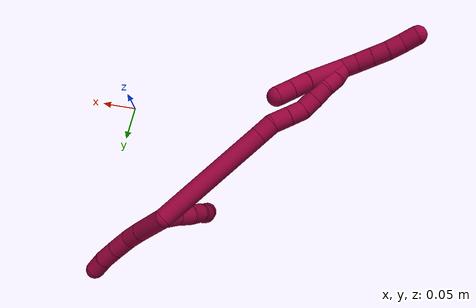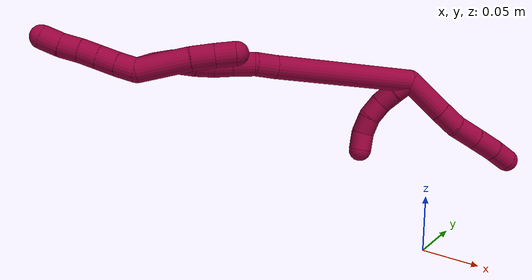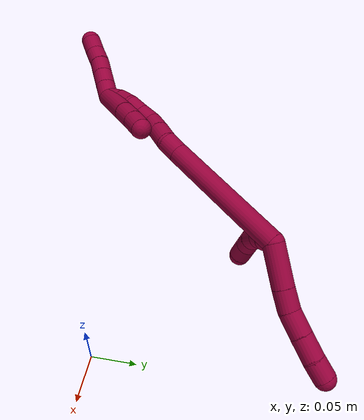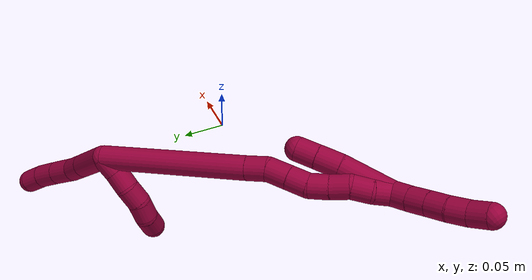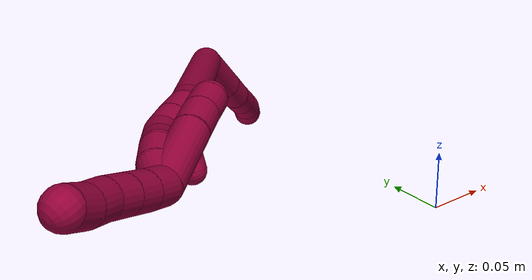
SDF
<sdf version="1.7">
 <world name="default">
  <model name="8">
   <static>0</static>
   <link name="8">
    <collision name="collision-cylinder-e_1_2_8">
     <pose>0.010073 0.01932 -0.010732 -2.07784 0.427662 -0.707049</pose>
     <geometry><cylinder><radius>0.0125</radius><length>0.048576</length></cylinder></geometry>
     <surface>
      <friction><ode><mu>1.16</mu><mu2>1.16</mu2><slip1>0</slip1><slip2>0</slip2></ode></friction>
      <contact><ode><kp>1e+06</kp><kd>1</kd><max_vel>0</max_vel><min_depth>0.001</min_depth></ode></contact>
     </surface>
    </collision>
    <visual name="visual-cylinder-e_1_2_8">
     <pose>0.010073 0.01932 -0.010732 -2.07784 0.427662 -0.707049</pose>
     <geometry><cylinder><radius>0.0125</radius><length>0.048576</length></cylinder></geometry>
     <material><ambient>0.584314 0 0.227451 1</ambient></material>
    </visual>
    <collision name="collision-cylinder-e_2_8_9">
     <pose>0.02571 0.048222 -0.026941 -2.09003 0.466881 -0.777802</pose>
     <geometry><cylinder><radius>0.0125</radius><length>0.024721</length></cylinder></geometry>
     <surface>
      <friction><ode><mu>1.16</mu><mu2>1.16</mu2><slip1>0</slip1><slip2>0</slip2></ode></friction>
      <contact><ode><kp>1e+06</kp><kd>1</kd><max_vel>0</max_vel><min_depth>0.001</min_depth></ode></contact>
     </surface>
    </collision>
    <visual name="visual-cylinder-e_2_8_9">
     <pose>0.02571 0.048222 -0.026941 -2.09003 0.466881 -0.777802</pose>
     <geometry><cylinder><radius>0.0125</radius><length>0.024721</length></cylinder></geometry>
     <material><ambient>0.584314 0 0.227451 1</ambient></material>
    </visual>
    <collision name="collision-cylinder-e_3_9_10">
     <pose>0.039364 0.066216 -0.039478 -2.26916 0.634992 -1.22805</pose>
     <geometry><cylinder><radius>0.0125</radius><length>0.027281</length></cylinder></geometry>
     <surface>
      <friction><ode><mu>1.16</mu><mu2>1.16</mu2><slip1>0</slip1><slip2>0</slip2></ode></friction>
      <contact><ode><kp>1e+06</kp><kd>1</kd><max_vel>0</max_vel><min_depth>0.001</min_depth></ode></contact>
     </surface>
    </collision>
    <visual name="visual-cylinder-e_3_9_10">
     <pose>0.039364 0.066216 -0.039478 -2.26916 0.634992 -1.22805</pose>
     <geometry><cylinder><radius>0.0125</radius><length>0.027281</length></cylinder></geometry>
     <material><ambient>0.584314 0 0.227451 1</ambient></material>
    </visual>
    <collision name="collision-cylinder-e_4_10_11">
     <pose>0.055602 0.082911 -0.053252 -2.25181 0.652395 -1.23419</pose>
     <geometry><cylinder><radius>0.0125</radius><length>0.026836</length></cylinder></geometry>
     <surface>
      <friction><ode><mu>1.16</mu><mu2>1.16</mu2><slip1>0</slip1><slip2>0</slip2></ode></friction>
      <contact><ode><kp>1e+06</kp><kd>1</kd><max_vel>0</max_vel><min_depth>0.001</min_depth></ode></contact>
     </surface>
    </collision>
    <visual name="visual-cylinder-e_4_10_11">
     <pose>0.055602 0.082911 -0.053252 -2.25181 0.652395 -1.23419</pose>
     <geometry><cylinder><radius>0.0125</radius><length>0.026836</length></cylinder></geometry>
     <material><ambient>0.584314 0 0.227451 1</ambient></material>
    </visual>
    <collision name="collision-cylinder-e_5_11_6">
     <pose>0.071348 0.098245 -0.064444 -2.13672 0.738305 -1.22696</pose>
     <geometry><cylinder><radius>0.0125</radius><length>0.022587</length></cylinder></geometry>
     <surface>
      <friction><ode><mu>1.16</mu><mu2>1.16</mu2><slip1>0</slip1><slip2>0</slip2></ode></friction>
      <contact><ode><kp>1e+06</kp><kd>1</kd><max_vel>0</max_vel><min_depth>0.001</min_depth></ode></contact>
     </surface>
    </collision>
    <visual name="visual-cylinder-e_5_11_6">
     <pose>0.071348 0.098245 -0.064444 -2.13672 0.738305 -1.22696</pose>
     <geometry><cylinder><radius>0.0125</radius><length>0.022587</length></cylinder></geometry>
     <material><ambient>0.584314 0 0.227451 1</ambient></material>
    </visual>
    <collision name="collision-cylinder-e_1_2_12">
     <pose>-0.001945 0.004157 0.008885 -0.43763 -0.195785 0.043671</pose>
     <geometry><cylinder><radius>0.0125</radius><length>0.02</length></cylinder></geometry>
     <surface>
      <friction><ode><mu>1.16</mu><mu2>1.16</mu2><slip1>0</slip1><slip2>0</slip2></ode></friction>
      <contact><ode><kp>1e+06</kp><kd>1</kd><max_vel>0</max_vel><min_depth>0.001</min_depth></ode></contact>
     </surface>
    </collision>
    <visual name="visual-cylinder-e_1_2_12">
     <pose>-0.001945 0.004157 0.008885 -0.43763 -0.195785 0.043671</pose>
     <geometry><cylinder><radius>0.0125</radius><length>0.02</length></cylinder></geometry>
     <material><ambient>0.584314 0 0.227451 1</ambient></material>
    </visual>
    <collision name="collision-cylinder-e_2_12_13">
     <pose>-0.004835 0.012675 0.026718 -0.453445 -0.094522 0.021821</pose>
     <geometry><cylinder><radius>0.0125</radius><length>0.02</length></cylinder></geometry>
     <surface>
      <friction><ode><mu>1.16</mu><mu2>1.16</mu2><slip1>0</slip1><slip2>0</slip2></ode></friction>
      <contact><ode><kp>1e+06</kp><kd>1</kd><max_vel>0</max_vel><min_depth>0.001</min_depth></ode></contact>
     </surface>
    </collision>
    <visual name="visual-cylinder-e_2_12_13">
     <pose>-0.004835 0.012675 0.026718 -0.453445 -0.094522 0.021821</pose>
     <geometry><cylinder><radius>0.0125</radius><length>0.02</length></cylinder></geometry>
     <material><ambient>0.584314 0 0.227451 1</ambient></material>
    </visual>
    <collision name="collision-cylinder-e_3_13_14">
     <pose>-0.007524 0.023388 0.043192 -0.701128 -0.175468 0.064306</pose>
     <geometry><cylinder><radius>0.0125</radius><length>0.02</length></cylinder></geometry>
     <surface>
      <friction><ode><mu>1.16</mu><mu2>1.16</mu2><slip1>0</slip1><slip2>0</slip2></ode></friction>
      <contact><ode><kp>1e+06</kp><kd>1</kd><max_vel>0</max_vel><min_depth>0.001</min_depth></ode></contact>
     </surface>
    </collision>
    <visual name="visual-cylinder-e_3_13_14">
     <pose>-0.007524 0.023388 0.043192 -0.701128 -0.175468 0.064306</pose>
     <geometry><cylinder><radius>0.0125</radius><length>0.02</length></cylinder></geometry>
     <material><ambient>0.584314 0 0.227451 1</ambient></material>
    </visual>
    <collision name="collision-cylinder-e_4_14_15">
     <pose>-0.009105 0.037773 0.056668 -0.933069 0.016516 -0.008318</pose>
     <geometry><cylinder><radius>0.0125</radius><length>0.02</length></cylinder></geometry>
     <surface>
      <friction><ode><mu>1.16</mu><mu2>1.16</mu2><slip1>0</slip1><slip2>0</slip2></ode></friction>
      <contact><ode><kp>1e+06</kp><kd>1</kd><max_vel>0</max_vel><min_depth>0.001</min_depth></ode></contact>
     </surface>
    </collision>
    <visual name="visual-cylinder-e_4_14_15">
     <pose>-0.009105 0.037773 0.056668 -0.933069 0.016516 -0.008318</pose>
     <geometry><cylinder><radius>0.0125</radius><length>0.02</length></cylinder></geometry>
     <material><ambient>0.584314 0 0.227451 1</ambient></material>
    </visual>
    <collision name="collision-cylinder-e_5_15_5">
     <pose>-0.010211 0.055216 0.065757 -1.24909 -0.127538 0.091988</pose>
     <geometry><cylinder><radius>0.0125</radius><length>0.02</length></cylinder></geometry>
     <surface>
      <friction><ode><mu>1.16</mu><mu2>1.16</mu2><slip1>0</slip1><slip2>0</slip2></ode></friction>
      <contact><ode><kp>1e+06</kp><kd>1</kd><max_vel>0</max_vel><min_depth>0.001</min_depth></ode></contact>
     </surface>
    </collision>
    <visual name="visual-cylinder-e_5_15_5">
     <pose>-0.010211 0.055216 0.065757 -1.24909 -0.127538 0.091988</pose>
     <geometry><cylinder><radius>0.0125</radius><length>0.02</length></cylinder></geometry>
     <material><ambient>0.584314 0 0.227451 1</ambient></material>
    </visual>
    <collision name="collision-cylinder-e_1_2_16">
     <pose>-0.055691 -0.01669 0.050802 0.317421 -0.805712 -0.13621</pose>
     <geometry><cylinder><radius>0.0125</radius><length>0.154413</length></cylinder></geometry>
     <surface>
      <friction><ode><mu>1.16</mu><mu2>1.16</mu2><slip1>0</slip1><slip2>0</slip2></ode></friction>
      <contact><ode><kp>1e+06</kp><kd>1</kd><max_vel>0</max_vel><min_depth>0.001</min_depth></ode></contact>
     </surface>
    </collision>
    <visual name="visual-cylinder-e_1_2_16">
     <pose>-0.055691 -0.01669 0.050802 0.317421 -0.805712 -0.13621</pose>
     <geometry><cylinder><radius>0.0125</radius><length>0.154413</length></cylinder></geometry>
     <material><ambient>0.584314 0 0.227451 1</ambient></material>
    </visual>
    <collision name="collision-cylinder-e_2_16_17">
     <pose>-0.119282 -0.036115 0.108644 0.370509 -0.807869 -0.159865</pose>
     <geometry><cylinder><radius>0.0125</radius><length>0.021861</length></cylinder></geometry>
     <surface>
      <friction><ode><mu>1.16</mu><mu2>1.16</mu2><slip1>0</slip1><slip2>0</slip2></ode></friction>
      <contact><ode><kp>1e+06</kp><kd>1</kd><max_vel>0</max_vel><min_depth>0.001</min_depth></ode></contact>
     </surface>
    </collision>
    <visual name="visual-cylinder-e_2_16_17">
     <pose>-0.119282 -0.036115 0.108644 0.370509 -0.807869 -0.159865</pose>
     <geometry><cylinder><radius>0.0125</radius><length>0.021861</length></cylinder></geometry>
     <material><ambient>0.584314 0 0.227451 1</ambient></material>
    </visual>
    <collision name="collision-cylinder-e_3_17_18">
     <pose>-0.132855 -0.04067 0.125542 0.182633 -0.514914 -0.048212</pose>
     <geometry><cylinder><radius>0.0125</radius><length>0.023034</length></cylinder></geometry>
     <surface>
      <friction><ode><mu>1.16</mu><mu2>1.16</mu2><slip1>0</slip1><slip2>0</slip2></ode></friction>
      <contact><ode><kp>1e+06</kp><kd>1</kd><max_vel>0</max_vel><min_depth>0.001</min_depth></ode></contact>
     </surface>
    </collision>
    <visual name="visual-cylinder-e_3_17_18">
     <pose>-0.132855 -0.04067 0.125542 0.182633 -0.514914 -0.048212</pose>
     <geometry><cylinder><radius>0.0125</radius><length>0.023034</length></cylinder></geometry>
     <material><ambient>0.584314 0 0.227451 1</ambient></material>
    </visual>
    <collision name="collision-cylinder-e_4_18_19">
     <pose>-0.143696 -0.043711 0.14413 0.138871 -0.530323 -0.037767</pose>
     <geometry><cylinder><radius>0.0125</radius><length>0.02044</length></cylinder></geometry>
     <surface>
      <friction><ode><mu>1.16</mu><mu2>1.16</mu2><slip1>0</slip1><slip2>0</slip2></ode></friction>
      <contact><ode><kp>1e+06</kp><kd>1</kd><max_vel>0</max_vel><min_depth>0.001</min_depth></ode></contact>
     </surface>
    </collision>
    <visual name="visual-cylinder-e_4_18_19">
     <pose>-0.143696 -0.043711 0.14413 0.138871 -0.530323 -0.037767</pose>
     <geometry><cylinder><radius>0.0125</radius><length>0.02044</length></cylinder></geometry>
     <material><ambient>0.584314 0 0.227451 1</ambient></material>
    </visual>
    <collision name="collision-cylinder-e_5_19_20">
     <pose>-0.156535 -0.046569 0.159259 0.250631 -0.859938 -0.115412</pose>
     <geometry><cylinder><radius>0.0125</radius><length>0.020243</length></cylinder></geometry>
     <surface>
      <friction><ode><mu>1.16</mu><mu2>1.16</mu2><slip1>0</slip1><slip2>0</slip2></ode></friction>
      <contact><ode><kp>1e+06</kp><kd>1</kd><max_vel>0</max_vel><min_depth>0.001</min_depth></ode></contact>
     </surface>
    </collision>
    <visual name="visual-cylinder-e_5_19_20">
     <pose>-0.156535 -0.046569 0.159259 0.250631 -0.859938 -0.115412</pose>
     <geometry><cylinder><radius>0.0125</radius><length>0.020243</length></cylinder></geometry>
     <material><ambient>0.584314 0 0.227451 1</ambient></material>
    </visual>
    <collision name="collision-cylinder-e_6_20_21">
     <pose>-0.172112 -0.050512 0.171337 0.385501 -0.911321 -0.190711</pose>
     <geometry><cylinder><radius>0.0125</radius><length>0.020009</length></cylinder></geometry>
     <surface>
      <friction><ode><mu>1.16</mu><mu2>1.16</mu2><slip1>0</slip1><slip2>0</slip2></ode></friction>
      <contact><ode><kp>1e+06</kp><kd>1</kd><max_vel>0</max_vel><min_depth>0.001</min_depth></ode></contact>
     </surface>
    </collision>
    <visual name="visual-cylinder-e_6_20_21">
     <pose>-0.172112 -0.050512 0.171337 0.385501 -0.911321 -0.190711</pose>
     <geometry><cylinder><radius>0.0125</radius><length>0.020009</length></cylinder></geometry>
     <material><ambient>0.584314 0 0.227451 1</ambient></material>
    </visual>
    <collision name="collision-cylinder-e_7_21_22">
     <pose>-0.186999 -0.052448 0.184168 -0.051627 -0.772643 0.021004</pose>
     <geometry><cylinder><radius>0.0125</radius><length>0.02</length></cylinder></geometry>
     <surface>
      <friction><ode><mu>1.16</mu><mu2>1.16</mu2><slip1>0</slip1><slip2>0</slip2></ode></friction>
      <contact><ode><kp>1e+06</kp><kd>1</kd><max_vel>0</max_vel><min_depth>0.001</min_depth></ode></contact>
     </surface>
    </collision>
    <visual name="visual-cylinder-e_7_21_22">
     <pose>-0.186999 -0.052448 0.184168 -0.051627 -0.772643 0.021004</pose>
     <geometry><cylinder><radius>0.0125</radius><length>0.02</length></cylinder></geometry>
     <material><ambient>0.584314 0 0.227451 1</ambient></material>
    </visual>
    <collision name="collision-cylinder-e_8_22_1">
     <pose>-0.202103 -0.049995 0.196766 -0.365265 -0.948183 0.188974</pose>
     <geometry><cylinder><radius>0.0125</radius><length>0.020001</length></cylinder></geometry>
     <surface>
      <friction><ode><mu>1.16</mu><mu2>1.16</mu2><slip1>0</slip1><slip2>0</slip2></ode></friction>
      <contact><ode><kp>1e+06</kp><kd>1</kd><max_vel>0</max_vel><min_depth>0.001</min_depth></ode></contact>
     </surface>
    </collision>
    <visual name="visual-cylinder-e_8_22_1">
     <pose>-0.202103 -0.049995 0.196766 -0.365265 -0.948183 0.188974</pose>
     <geometry><cylinder><radius>0.0125</radius><length>0.020001</length></cylinder></geometry>
     <material><ambient>0.584314 0 0.227451 1</ambient></material>
    </visual>
    <collision name="collision-cylinder-e_1_1_23">
     <pose>-0.214151 -0.052578 0.210139 0.53208 -0.403306 -0.1113</pose>
     <geometry><cylinder><radius>0.0125</radius><length>0.02</length></cylinder></geometry>
     <surface>
      <friction><ode><mu>1.16</mu><mu2>1.16</mu2><slip1>0</slip1><slip2>0</slip2></ode></friction>
      <contact><ode><kp>1e+06</kp><kd>1</kd><max_vel>0</max_vel><min_depth>0.001</min_depth></ode></contact>
     </surface>
    </collision>
    <visual name="visual-cylinder-e_1_1_23">
     <pose>-0.214151 -0.052578 0.210139 0.53208 -0.403306 -0.1113</pose>
     <geometry><cylinder><radius>0.0125</radius><length>0.02</length></cylinder></geometry>
     <material><ambient>0.584314 0 0.227451 1</ambient></material>
    </visual>
    <collision name="collision-cylinder-e_2_23_24">
     <pose>-0.222069 -0.062341 0.225686 0.589466 -0.410793 -0.126322</pose>
     <geometry><cylinder><radius>0.0125</radius><length>0.02</length></cylinder></geometry>
     <surface>
      <friction><ode><mu>1.16</mu><mu2>1.16</mu2><slip1>0</slip1><slip2>0</slip2></ode></friction>
      <contact><ode><kp>1e+06</kp><kd>1</kd><max_vel>0</max_vel><min_depth>0.001</min_depth></ode></contact>
     </surface>
    </collision>
    <visual name="visual-cylinder-e_2_23_24">
     <pose>-0.222069 -0.062341 0.225686 0.589466 -0.410793 -0.126322</pose>
     <geometry><cylinder><radius>0.0125</radius><length>0.02</length></cylinder></geometry>
     <material><ambient>0.584314 0 0.227451 1</ambient></material>
    </visual>
    <collision name="collision-cylinder-e_3_24_25">
     <pose>-0.229988 -0.072505 0.240983 0.583486 -0.403425 -0.122669</pose>
     <geometry><cylinder><radius>0.0125</radius><length>0.02</length></cylinder></geometry>
     <surface>
      <friction><ode><mu>1.16</mu><mu2>1.16</mu2><slip1>0</slip1><slip2>0</slip2></ode></friction>
      <contact><ode><kp>1e+06</kp><kd>1</kd><max_vel>0</max_vel><min_depth>0.001</min_depth></ode></contact>
     </surface>
    </collision>
    <visual name="visual-cylinder-e_3_24_25">
     <pose>-0.229988 -0.072505 0.240983 0.583486 -0.403425 -0.122669</pose>
     <geometry><cylinder><radius>0.0125</radius><length>0.02</length></cylinder></geometry>
     <material><ambient>0.584314 0 0.227451 1</ambient></material>
    </visual>
    <collision name="collision-cylinder-e_4_25_26">
     <pose>-0.238898 -0.081895 0.256173 0.522048 -0.521694 -0.142362</pose>
     <geometry><cylinder><radius>0.0125</radius><length>0.02</length></cylinder></geometry>
     <surface>
      <friction><ode><mu>1.16</mu><mu2>1.16</mu2><slip1>0</slip1><slip2>0</slip2></ode></friction>
      <contact><ode><kp>1e+06</kp><kd>1</kd><max_vel>0</max_vel><min_depth>0.001</min_depth></ode></contact>
     </surface>
    </collision>
    <visual name="visual-cylinder-e_4_25_26">
     <pose>-0.238898 -0.081895 0.256173 0.522048 -0.521694 -0.142362</pose>
     <geometry><cylinder><radius>0.0125</radius><length>0.02</length></cylinder></geometry>
     <material><ambient>0.584314 0 0.227451 1</ambient></material>
    </visual>
    <collision name="collision-cylinder-e_5_26_4">
     <pose>-0.248822 -0.091661 0.270468 0.676392 -0.51675 -0.185368</pose>
     <geometry><cylinder><radius>0.0125</radius><length>0.02</length></cylinder></geometry>
     <surface>
      <friction><ode><mu>1.16</mu><mu2>1.16</mu2><slip1>0</slip1><slip2>0</slip2></ode></friction>
      <contact><ode><kp>1e+06</kp><kd>1</kd><max_vel>0</max_vel><min_depth>0.001</min_depth></ode></contact>
     </surface>
    </collision>
    <visual name="visual-cylinder-e_5_26_4">
     <pose>-0.248822 -0.091661 0.270468 0.676392 -0.51675 -0.185368</pose>
     <geometry><cylinder><radius>0.0125</radius><length>0.02</length></cylinder></geometry>
     <material><ambient>0.584314 0 0.227451 1</ambient></material>
    </visual>
    <collision name="collision-cylinder-e_1_1_27">
     <pose>-0.197255 -0.048868 0.178104 3.10197 0.493301 2.98452</pose>
     <geometry><cylinder><radius>0.0125</radius><length>0.054788</length></cylinder></geometry>
     <surface>
      <friction><ode><mu>1.16</mu><mu2>1.16</mu2><slip1>0</slip1><slip2>0</slip2></ode></friction>
      <contact><ode><kp>1e+06</kp><kd>1</kd><max_vel>0</max_vel><min_depth>0.001</min_depth></ode></contact>
     </surface>
    </collision>
    <visual name="visual-cylinder-e_1_1_27">
     <pose>-0.197255 -0.048868 0.178104 3.10197 0.493301 2.98452</pose>
     <geometry><cylinder><radius>0.0125</radius><length>0.054788</length></cylinder></geometry>
     <material><ambient>0.584314 0 0.227451 1</ambient></material>
    </visual>
    <collision name="collision-cylinder-e_2_27_28">
     <pose>-0.177805 -0.0494 0.143781 -3.10014 0.564773 -2.99893</pose>
     <geometry><cylinder><radius>0.0125</radius><length>0.024205</length></cylinder></geometry>
     <surface>
      <friction><ode><mu>1.16</mu><mu2>1.16</mu2><slip1>0</slip1><slip2>0</slip2></ode></friction>
      <contact><ode><kp>1e+06</kp><kd>1</kd><max_vel>0</max_vel><min_depth>0.001</min_depth></ode></contact>
     </surface>
    </collision>
    <visual name="visual-cylinder-e_2_27_28">
     <pose>-0.177805 -0.0494 0.143781 -3.10014 0.564773 -2.99893</pose>
     <geometry><cylinder><radius>0.0125</radius><length>0.024205</length></cylinder></geometry>
     <material><ambient>0.584314 0 0.227451 1</ambient></material>
    </visual>
    <collision name="collision-cylinder-e_3_28_3">
     <pose>-0.165806 -0.048237 0.124663 -3.0588 0.55358 -2.85203</pose>
     <geometry><cylinder><radius>0.0125</radius><length>0.021008</length></cylinder></geometry>
     <surface>
      <friction><ode><mu>1.16</mu><mu2>1.16</mu2><slip1>0</slip1><slip2>0</slip2></ode></friction>
      <contact><ode><kp>1e+06</kp><kd>1</kd><max_vel>0</max_vel><min_depth>0.001</min_depth></ode></contact>
     </surface>
    </collision>
    <visual name="visual-cylinder-e_3_28_3">
     <pose>-0.165806 -0.048237 0.124663 -3.0588 0.55358 -2.85203</pose>
     <geometry><cylinder><radius>0.0125</radius><length>0.021008</length></cylinder></geometry>
     <material><ambient>0.584314 0 0.227451 1</ambient></material>
    </visual>
    <collision name="collision-sphere-3">
     <pose>-0.160284 -0.047498 0.115758 0 -0 0</pose>
     <geometry><sphere><radius>0.0125</radius></sphere></geometry>
     <surface>
      <friction><ode><mu>1.16</mu><mu2>1.16</mu2><slip1>0</slip1><slip2>0</slip2></ode></friction>
      <contact><ode><kp>1e+06</kp><kd>1</kd><max_vel>0</max_vel><min_depth>0.001</min_depth></ode></contact>
     </surface>
    </collision>
    <visual name="visual-sphere-3">
     <pose>-0.160284 -0.047498 0.115758 0 -0 0</pose>
     <geometry><sphere><radius>0.0125</radius></sphere></geometry>
     <material><ambient>0.584314 0 0.227451 1</ambient></material>
    </visual>
    <collision name="collision-sphere-28">
     <pose>-0.171328 -0.048976 0.133567 0 -0 0</pose>
     <geometry><sphere><radius>0.0125</radius></sphere></geometry>
     <surface>
      <friction><ode><mu>1.16</mu><mu2>1.16</mu2><slip1>0</slip1><slip2>0</slip2></ode></friction>
      <contact><ode><kp>1e+06</kp><kd>1</kd><max_vel>0</max_vel><min_depth>0.001</min_depth></ode></contact>
     </surface>
    </collision>
    <visual name="visual-sphere-28">
     <pose>-0.171328 -0.048976 0.133567 0 -0 0</pose>
     <geometry><sphere><radius>0.0125</radius></sphere></geometry>
     <material><ambient>0.584314 0 0.227451 1</ambient></material>
    </visual>
    <collision name="collision-sphere-27">
     <pose>-0.184283 -0.049823 0.153995 0 -0 0</pose>
     <geometry><sphere><radius>0.0125</radius></sphere></geometry>
     <surface>
      <friction><ode><mu>1.16</mu><mu2>1.16</mu2><slip1>0</slip1><slip2>0</slip2></ode></friction>
      <contact><ode><kp>1e+06</kp><kd>1</kd><max_vel>0</max_vel><min_depth>0.001</min_depth></ode></contact>
     </surface>
    </collision>
    <visual name="visual-sphere-27">
     <pose>-0.184283 -0.049823 0.153995 0 -0 0</pose>
     <geometry><sphere><radius>0.0125</radius></sphere></geometry>
     <material><ambient>0.584314 0 0.227451 1</ambient></material>
    </visual>
    <collision name="collision-sphere-4">
     <pose>-0.253762 -0.097103 0.277248 0 -0 0</pose>
     <geometry><sphere><radius>0.0125</radius></sphere></geometry>
     <surface>
      <friction><ode><mu>1.16</mu><mu2>1.16</mu2><slip1>0</slip1><slip2>0</slip2></ode></friction>
      <contact><ode><kp>1e+06</kp><kd>1</kd><max_vel>0</max_vel><min_depth>0.001</min_depth></ode></contact>
     </surface>
    </collision>
    <visual name="visual-sphere-4">
     <pose>-0.253762 -0.097103 0.277248 0 -0 0</pose>
     <geometry><sphere><radius>0.0125</radius></sphere></geometry>
     <material><ambient>0.584314 0 0.227451 1</ambient></material>
    </visual>
    <collision name="collision-sphere-26">
     <pose>-0.243881 -0.086218 0.263688 0 -0 0</pose>
     <geometry><sphere><radius>0.0125</radius></sphere></geometry>
     <surface>
      <friction><ode><mu>1.16</mu><mu2>1.16</mu2><slip1>0</slip1><slip2>0</slip2></ode></friction>
      <contact><ode><kp>1e+06</kp><kd>1</kd><max_vel>0</max_vel><min_depth>0.001</min_depth></ode></contact>
     </surface>
    </collision>
    <visual name="visual-sphere-26">
     <pose>-0.243881 -0.086218 0.263688 0 -0 0</pose>
     <geometry><sphere><radius>0.0125</radius></sphere></geometry>
     <material><ambient>0.584314 0 0.227451 1</ambient></material>
    </visual>
    <collision name="collision-sphere-25">
     <pose>-0.233914 -0.077572 0.248658 0 -0 0</pose>
     <geometry><sphere><radius>0.0125</radius></sphere></geometry>
     <surface>
      <friction><ode><mu>1.16</mu><mu2>1.16</mu2><slip1>0</slip1><slip2>0</slip2></ode></friction>
      <contact><ode><kp>1e+06</kp><kd>1</kd><max_vel>0</max_vel><min_depth>0.001</min_depth></ode></contact>
     </surface>
    </collision>
    <visual name="visual-sphere-25">
     <pose>-0.233914 -0.077572 0.248658 0 -0 0</pose>
     <geometry><sphere><radius>0.0125</radius></sphere></geometry>
     <material><ambient>0.584314 0 0.227451 1</ambient></material>
    </visual>
    <collision name="collision-sphere-24">
     <pose>-0.226063 -0.067438 0.233307 0 -0 0</pose>
     <geometry><sphere><radius>0.0125</radius></sphere></geometry>
     <surface>
      <friction><ode><mu>1.16</mu><mu2>1.16</mu2><slip1>0</slip1><slip2>0</slip2></ode></friction>
      <contact><ode><kp>1e+06</kp><kd>1</kd><max_vel>0</max_vel><min_depth>0.001</min_depth></ode></contact>
     </surface>
    </collision>
    <visual name="visual-sphere-24">
     <pose>-0.226063 -0.067438 0.233307 0 -0 0</pose>
     <geometry><sphere><radius>0.0125</radius></sphere></geometry>
     <material><ambient>0.584314 0 0.227451 1</ambient></material>
    </visual>
    <collision name="collision-sphere-23">
     <pose>-0.218076 -0.057244 0.218065 0 -0 0</pose>
     <geometry><sphere><radius>0.0125</radius></sphere></geometry>
     <surface>
      <friction><ode><mu>1.16</mu><mu2>1.16</mu2><slip1>0</slip1><slip2>0</slip2></ode></friction>
      <contact><ode><kp>1e+06</kp><kd>1</kd><max_vel>0</max_vel><min_depth>0.001</min_depth></ode></contact>
     </surface>
    </collision>
    <visual name="visual-sphere-23">
     <pose>-0.218076 -0.057244 0.218065 0 -0 0</pose>
     <geometry><sphere><radius>0.0125</radius></sphere></geometry>
     <material><ambient>0.584314 0 0.227451 1</ambient></material>
    </visual>
    <collision name="collision-sphere-1">
     <pose>-0.210227 -0.047912 0.202213 0 -0 0</pose>
     <geometry><sphere><radius>0.0125</radius></sphere></geometry>
     <surface>
      <friction><ode><mu>1.16</mu><mu2>1.16</mu2><slip1>0</slip1><slip2>0</slip2></ode></friction>
      <contact><ode><kp>1e+06</kp><kd>1</kd><max_vel>0</max_vel><min_depth>0.001</min_depth></ode></contact>
     </surface>
    </collision>
    <visual name="visual-sphere-1">
     <pose>-0.210227 -0.047912 0.202213 0 -0 0</pose>
     <geometry><sphere><radius>0.0125</radius></sphere></geometry>
     <material><ambient>0.584314 0 0.227451 1</ambient></material>
    </visual>
    <collision name="collision-sphere-22">
     <pose>-0.193979 -0.052078 0.191319 0 -0 0</pose>
     <geometry><sphere><radius>0.0125</radius></sphere></geometry>
     <surface>
      <friction><ode><mu>1.16</mu><mu2>1.16</mu2><slip1>0</slip1><slip2>0</slip2></ode></friction>
      <contact><ode><kp>1e+06</kp><kd>1</kd><max_vel>0</max_vel><min_depth>0.001</min_depth></ode></contact>
     </surface>
    </collision>
    <visual name="visual-sphere-22">
     <pose>-0.193979 -0.052078 0.191319 0 -0 0</pose>
     <geometry><sphere><radius>0.0125</radius></sphere></geometry>
     <material><ambient>0.584314 0 0.227451 1</ambient></material>
    </visual>
    <collision name="collision-sphere-21">
     <pose>-0.180018 -0.052817 0.177016 0 -0 0</pose>
     <geometry><sphere><radius>0.0125</radius></sphere></geometry>
     <surface>
      <friction><ode><mu>1.16</mu><mu2>1.16</mu2><slip1>0</slip1><slip2>0</slip2></ode></friction>
      <contact><ode><kp>1e+06</kp><kd>1</kd><max_vel>0</max_vel><min_depth>0.001</min_depth></ode></contact>
     </surface>
    </collision>
    <visual name="visual-sphere-21">
     <pose>-0.180018 -0.052817 0.177016 0 -0 0</pose>
     <geometry><sphere><radius>0.0125</radius></sphere></geometry>
     <material><ambient>0.584314 0 0.227451 1</ambient></material>
    </visual>
    <collision name="collision-sphere-6">
     <pose>0.078949 0.105296 -0.068922 0 -0 0</pose>
     <geometry><sphere><radius>0.0125</radius></sphere></geometry>
     <surface>
      <friction><ode><mu>1.16</mu><mu2>1.16</mu2><slip1>0</slip1><slip2>0</slip2></ode></friction>
      <contact><ode><kp>1e+06</kp><kd>1</kd><max_vel>0</max_vel><min_depth>0.001</min_depth></ode></contact>
     </surface>
    </collision>
    <visual name="visual-sphere-6">
     <pose>0.078949 0.105296 -0.068922 0 -0 0</pose>
     <geometry><sphere><radius>0.0125</radius></sphere></geometry>
     <material><ambient>0.584314 0 0.227451 1</ambient></material>
    </visual>
    <collision name="collision-sphere-11">
     <pose>0.063748 0.091195 -0.059965 0 -0 0</pose>
     <geometry><sphere><radius>0.0125</radius></sphere></geometry>
     <surface>
      <friction><ode><mu>1.16</mu><mu2>1.16</mu2><slip1>0</slip1><slip2>0</slip2></ode></friction>
      <contact><ode><kp>1e+06</kp><kd>1</kd><max_vel>0</max_vel><min_depth>0.001</min_depth></ode></contact>
     </surface>
    </collision>
    <visual name="visual-sphere-11">
     <pose>0.063748 0.091195 -0.059965 0 -0 0</pose>
     <geometry><sphere><radius>0.0125</radius></sphere></geometry>
     <material><ambient>0.584314 0 0.227451 1</ambient></material>
    </visual>
    <collision name="collision-sphere-10">
     <pose>0.047455 0.074627 -0.046539 0 -0 0</pose>
     <geometry><sphere><radius>0.0125</radius></sphere></geometry>
     <surface>
      <friction><ode><mu>1.16</mu><mu2>1.16</mu2><slip1>0</slip1><slip2>0</slip2></ode></friction>
      <contact><ode><kp>1e+06</kp><kd>1</kd><max_vel>0</max_vel><min_depth>0.001</min_depth></ode></contact>
     </surface>
    </collision>
    <visual name="visual-sphere-10">
     <pose>0.047455 0.074627 -0.046539 0 -0 0</pose>
     <geometry><sphere><radius>0.0125</radius></sphere></geometry>
     <material><ambient>0.584314 0 0.227451 1</ambient></material>
    </visual>
    <collision name="collision-sphere-9">
     <pose>0.031273 0.057805 -0.032418 0 -0 0</pose>
     <geometry><sphere><radius>0.0125</radius></sphere></geometry>
     <surface>
      <friction><ode><mu>1.16</mu><mu2>1.16</mu2><slip1>0</slip1><slip2>0</slip2></ode></friction>
      <contact><ode><kp>1e+06</kp><kd>1</kd><max_vel>0</max_vel><min_depth>0.001</min_depth></ode></contact>
     </surface>
    </collision>
    <visual name="visual-sphere-9">
     <pose>0.031273 0.057805 -0.032418 0 -0 0</pose>
     <geometry><sphere><radius>0.0125</radius></sphere></geometry>
     <material><ambient>0.584314 0 0.227451 1</ambient></material>
    </visual>
    <collision name="collision-sphere-2">
     <geometry><sphere><radius>0.0125</radius></sphere></geometry>
     <surface>
      <friction><ode><mu>1.16</mu><mu2>1.16</mu2><slip1>0</slip1><slip2>0</slip2></ode></friction>
      <contact><ode><kp>1e+06</kp><kd>1</kd><max_vel>0</max_vel><min_depth>0.001</min_depth></ode></contact>
     </surface>
    </collision>
    <visual name="visual-sphere-2">
     <geometry><sphere><radius>0.0125</radius></sphere></geometry>
     <material><ambient>0.584314 0 0.227451 1</ambient></material>
    </visual>
    <collision name="collision-sphere-19">
     <pose>-0.148865 -0.044931 0.152861 0 -0 0</pose>
     <geometry><sphere><radius>0.0125</radius></sphere></geometry>
     <surface>
      <friction><ode><mu>1.16</mu><mu2>1.16</mu2><slip1>0</slip1><slip2>0</slip2></ode></friction>
      <contact><ode><kp>1e+06</kp><kd>1</kd><max_vel>0</max_vel><min_depth>0.001</min_depth></ode></contact>
     </surface>
    </collision>
    <visual name="visual-sphere-19">
     <pose>-0.148865 -0.044931 0.152861 0 -0 0</pose>
     <geometry><sphere><radius>0.0125</radius></sphere></geometry>
     <material><ambient>0.584314 0 0.227451 1</ambient></material>
    </visual>
    <collision name="collision-sphere-8">
     <pose>0.020146 0.03864 -0.021464 0 -0 0</pose>
     <geometry><sphere><radius>0.0125</radius></sphere></geometry>
     <surface>
      <friction><ode><mu>1.16</mu><mu2>1.16</mu2><slip1>0</slip1><slip2>0</slip2></ode></friction>
      <contact><ode><kp>1e+06</kp><kd>1</kd><max_vel>0</max_vel><min_depth>0.001</min_depth></ode></contact>
     </surface>
    </collision>
    <visual name="visual-sphere-8">
     <pose>0.020146 0.03864 -0.021464 0 -0 0</pose>
     <geometry><sphere><radius>0.0125</radius></sphere></geometry>
     <material><ambient>0.584314 0 0.227451 1</ambient></material>
    </visual>
    <collision name="collision-sphere-12">
     <pose>-0.003891 0.008314 0.017769 0 -0 0</pose>
     <geometry><sphere><radius>0.0125</radius></sphere></geometry>
     <surface>
      <friction><ode><mu>1.16</mu><mu2>1.16</mu2><slip1>0</slip1><slip2>0</slip2></ode></friction>
      <contact><ode><kp>1e+06</kp><kd>1</kd><max_vel>0</max_vel><min_depth>0.001</min_depth></ode></contact>
     </surface>
    </collision>
    <visual name="visual-sphere-12">
     <pose>-0.003891 0.008314 0.017769 0 -0 0</pose>
     <geometry><sphere><radius>0.0125</radius></sphere></geometry>
     <material><ambient>0.584314 0 0.227451 1</ambient></material>
    </visual>
    <collision name="collision-sphere-13">
     <pose>-0.005778 0.017036 0.035668 0 -0 0</pose>
     <geometry><sphere><radius>0.0125</radius></sphere></geometry>
     <surface>
      <friction><ode><mu>1.16</mu><mu2>1.16</mu2><slip1>0</slip1><slip2>0</slip2></ode></friction>
      <contact><ode><kp>1e+06</kp><kd>1</kd><max_vel>0</max_vel><min_depth>0.001</min_depth></ode></contact>
     </surface>
    </collision>
    <visual name="visual-sphere-13">
     <pose>-0.005778 0.017036 0.035668 0 -0 0</pose>
     <geometry><sphere><radius>0.0125</radius></sphere></geometry>
     <material><ambient>0.584314 0 0.227451 1</ambient></material>
    </visual>
    <collision name="collision-sphere-14">
     <pose>-0.00927 0.02974 0.050715 0 -0 0</pose>
     <geometry><sphere><radius>0.0125</radius></sphere></geometry>
     <surface>
      <friction><ode><mu>1.16</mu><mu2>1.16</mu2><slip1>0</slip1><slip2>0</slip2></ode></friction>
      <contact><ode><kp>1e+06</kp><kd>1</kd><max_vel>0</max_vel><min_depth>0.001</min_depth></ode></contact>
     </surface>
    </collision>
    <visual name="visual-sphere-14">
     <pose>-0.00927 0.02974 0.050715 0 -0 0</pose>
     <geometry><sphere><radius>0.0125</radius></sphere></geometry>
     <material><ambient>0.584314 0 0.227451 1</ambient></material>
    </visual>
    <collision name="collision-sphere-15">
     <pose>-0.008939 0.045806 0.062621 0 -0 0</pose>
     <geometry><sphere><radius>0.0125</radius></sphere></geometry>
     <surface>
      <friction><ode><mu>1.16</mu><mu2>1.16</mu2><slip1>0</slip1><slip2>0</slip2></ode></friction>
      <contact><ode><kp>1e+06</kp><kd>1</kd><max_vel>0</max_vel><min_depth>0.001</min_depth></ode></contact>
     </surface>
    </collision>
    <visual name="visual-sphere-15">
     <pose>-0.008939 0.045806 0.062621 0 -0 0</pose>
     <geometry><sphere><radius>0.0125</radius></sphere></geometry>
     <material><ambient>0.584314 0 0.227451 1</ambient></material>
    </visual>
    <collision name="collision-sphere-5">
     <pose>-0.011483 0.064626 0.068893 0 -0 0</pose>
     <geometry><sphere><radius>0.0125</radius></sphere></geometry>
     <surface>
      <friction><ode><mu>1.16</mu><mu2>1.16</mu2><slip1>0</slip1><slip2>0</slip2></ode></friction>
      <contact><ode><kp>1e+06</kp><kd>1</kd><max_vel>0</max_vel><min_depth>0.001</min_depth></ode></contact>
     </surface>
    </collision>
    <visual name="visual-sphere-5">
     <pose>-0.011483 0.064626 0.068893 0 -0 0</pose>
     <geometry><sphere><radius>0.0125</radius></sphere></geometry>
     <material><ambient>0.584314 0 0.227451 1</ambient></material>
    </visual>
    <collision name="collision-sphere-16">
     <pose>-0.111382 -0.03338 0.101603 0 -0 0</pose>
     <geometry><sphere><radius>0.0125</radius></sphere></geometry>
     <surface>
      <friction><ode><mu>1.16</mu><mu2>1.16</mu2><slip1>0</slip1><slip2>0</slip2></ode></friction>
      <contact><ode><kp>1e+06</kp><kd>1</kd><max_vel>0</max_vel><min_depth>0.001</min_depth></ode></contact>
     </surface>
    </collision>
    <visual name="visual-sphere-16">
     <pose>-0.111382 -0.03338 0.101603 0 -0 0</pose>
     <geometry><sphere><radius>0.0125</radius></sphere></geometry>
     <material><ambient>0.584314 0 0.227451 1</ambient></material>
    </visual>
    <collision name="collision-sphere-17">
     <pose>-0.127183 -0.03885 0.115685 0 -0 0</pose>
     <geometry><sphere><radius>0.0125</radius></sphere></geometry>
     <surface>
      <friction><ode><mu>1.16</mu><mu2>1.16</mu2><slip1>0</slip1><slip2>0</slip2></ode></friction>
      <contact><ode><kp>1e+06</kp><kd>1</kd><max_vel>0</max_vel><min_depth>0.001</min_depth></ode></contact>
     </surface>
    </collision>
    <visual name="visual-sphere-17">
     <pose>-0.127183 -0.03885 0.115685 0 -0 0</pose>
     <geometry><sphere><radius>0.0125</radius></sphere></geometry>
     <material><ambient>0.584314 0 0.227451 1</ambient></material>
    </visual>
    <collision name="collision-sphere-18">
     <pose>-0.138526 -0.042491 0.135398 0 -0 0</pose>
     <geometry><sphere><radius>0.0125</radius></sphere></geometry>
     <surface>
      <friction><ode><mu>1.16</mu><mu2>1.16</mu2><slip1>0</slip1><slip2>0</slip2></ode></friction>
      <contact><ode><kp>1e+06</kp><kd>1</kd><max_vel>0</max_vel><min_depth>0.001</min_depth></ode></contact>
     </surface>
    </collision>
    <visual name="visual-sphere-18">
     <pose>-0.138526 -0.042491 0.135398 0 -0 0</pose>
     <geometry><sphere><radius>0.0125</radius></sphere></geometry>
     <material><ambient>0.584314 0 0.227451 1</ambient></material>
    </visual>
    <collision name="collision-sphere-20">
     <pose>-0.164205 -0.048207 0.165657 0 -0 0</pose>
     <geometry><sphere><radius>0.0125</radius></sphere></geometry>
     <surface>
      <friction><ode><mu>1.16</mu><mu2>1.16</mu2><slip1>0</slip1><slip2>0</slip2></ode></friction>
      <contact><ode><kp>1e+06</kp><kd>1</kd><max_vel>0</max_vel><min_depth>0.001</min_depth></ode></contact>
     </surface>
    </collision>
    <visual name="visual-sphere-20">
     <pose>-0.164205 -0.048207 0.165657 0 -0 0</pose>
     <geometry><sphere><radius>0.0125</radius></sphere></geometry>
     <material><ambient>0.584314 0 0.227451 1</ambient></material>
    </visual>
    <inertial>
     <pose>-0.091522 -0.01368 0.092173 0 -0 0</pose>
     <mass>0.75</mass>
     <inertia>
      <ixx>0.000177</ixx>
      <ixy>0</ixy>
      <ixz>0</ixz>
      <iyy>0.000309</iyy>
      <iyz>0</iyz>
      <izz>0.000285</izz>
     </inertia>
    </inertial>
   </link>
   <pose>-0.107155 0.177479 0.104167 -1.90321 0.231862 1.67488</pose>
  </model>
 </world>
</sdf>
